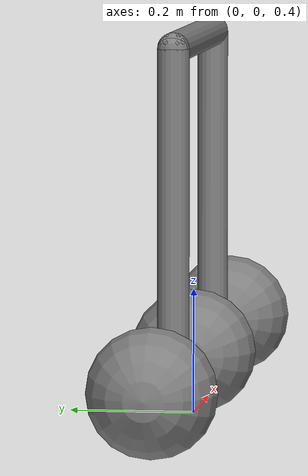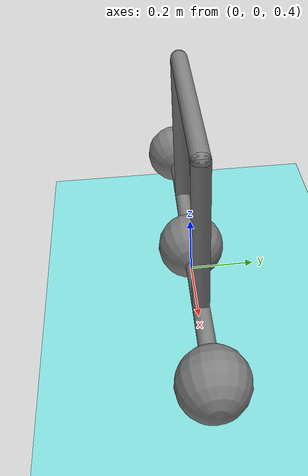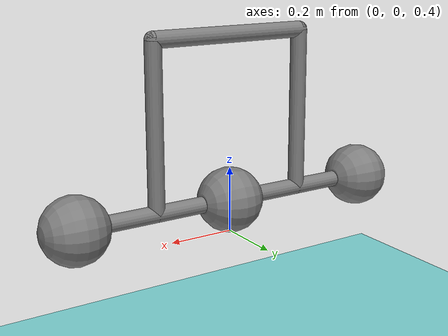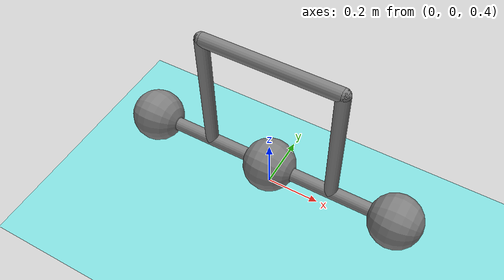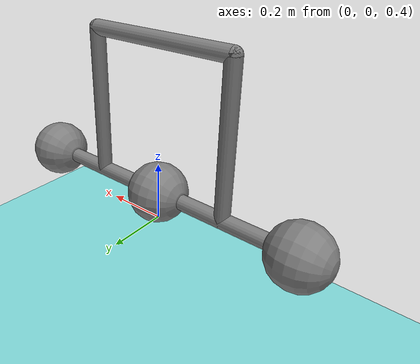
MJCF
<mujoco model="MuJoCo Model">
  <compiler angle="radian"/>

  <asset>
    <texture type="2d" name="ground_texture" builtin="checker" rgb1="0.5 0.8 0.9" rgb2="0.5 0.9 0.8" markrgb="0.8 0.8 0.8" width="200" height="200"/>
    <texture type="skybox" name="skybox" builtin="gradient" width="300" height="1800"/>
    <material name="groundplane" texture="ground_texture" texrepeat="2 2"/>
  </asset>

  <worldbody>
    <geom size="0 0 0.05" type="plane" material="groundplane"/>
    <light pos="0 0 15" dir="0 0 -1" directional="true" diffuse="0.1 0.1 0.1" specular="0 0 0"/>
    <light pos="0 2 15" dir="0 0 -1" directional="true" diffuse="0.1 0.1 0.1" specular="0 0 0"/>
    <light pos="0 4 15" dir="0 0 -1" directional="true" diffuse="0.1 0.1 0.1" specular="0 0 0"/>
    <light pos="0 6 15" dir="0 0 -1" directional="true" diffuse="0.1 0.1 0.1" specular="0 0 0"/>
    <light pos="0 8 15" dir="0 0 -1" directional="true" diffuse="0.1 0.1 0.1" specular="0 0 0"/>
    <light pos="2 0 15" dir="0 0 -1" directional="true" diffuse="0.1 0.1 0.1" specular="0 0 0"/>
    <light pos="2 2 15" dir="0 0 -1" directional="true" diffuse="0.1 0.1 0.1" specular="0 0 0"/>
    <light pos="2 4 15" dir="0 0 -1" directional="true" diffuse="0.1 0.1 0.1" specular="0 0 0"/>
    <light pos="2 6 15" dir="0 0 -1" directional="true" diffuse="0.1 0.1 0.1" specular="0 0 0"/>
    <light pos="2 8 15" dir="0 0 -1" directional="true" diffuse="0.1 0.1 0.1" specular="0 0 0"/>
    <light pos="4 0 15" dir="0 0 -1" directional="true" diffuse="0.1 0.1 0.1" specular="0 0 0"/>
    <light pos="4 2 15" dir="0 0 -1" directional="true" diffuse="0.1 0.1 0.1" specular="0 0 0"/>
    <light pos="4 4 15" dir="0 0 -1" directional="true" diffuse="0.1 0.1 0.1" specular="0 0 0"/>
    <light pos="4 6 15" dir="0 0 -1" directional="true" diffuse="0.1 0.1 0.1" specular="0 0 0"/>
    <light pos="4 8 15" dir="0 0 -1" directional="true" diffuse="0.1 0.1 0.1" specular="0 0 0"/>
    <light pos="6 0 15" dir="0 0 -1" directional="true" diffuse="0.1 0.1 0.1" specular="0 0 0"/>
    <light pos="6 2 15" dir="0 0 -1" directional="true" diffuse="0.1 0.1 0.1" specular="0 0 0"/>
    <light pos="6 4 15" dir="0 0 -1" directional="true" diffuse="0.1 0.1 0.1" specular="0 0 0"/>
    <light pos="6 6 15" dir="0 0 -1" directional="true" diffuse="0.1 0.1 0.1" specular="0 0 0"/>
    <light pos="6 8 15" dir="0 0 -1" directional="true" diffuse="0.1 0.1 0.1" specular="0 0 0"/>
    <light pos="8 0 15" dir="0 0 -1" directional="true" diffuse="0.1 0.1 0.1" specular="0 0 0"/>
    <light pos="8 2 15" dir="0 0 -1" directional="true" diffuse="0.1 0.1 0.1" specular="0 0 0"/>
    <light pos="8 4 15" dir="0 0 -1" directional="true" diffuse="0.1 0.1 0.1" specular="0 0 0"/>
    <light pos="8 6 15" dir="0 0 -1" directional="true" diffuse="0.1 0.1 0.1" specular="0 0 0"/>
    <light pos="8 8 15" dir="0 0 -1" directional="true" diffuse="0.1 0.1 0.1" specular="0 0 0"/>
    <body name="torso" pos="0 0 1">
      <joint name="z_slide" pos="0 0 0" axis="0 0 1" type="slide"/>
      <joint name="x_slide" pos="0 0 0" axis="1 0 0" type="slide"/>
      <joint name="y_rot" pos="0 0 0" axis="0 1 0"/>
      <geom size="0.025 0.25" quat="0.707107 0 0.707107 0" type="capsule" contype="2" mass="1"/>
      <body name="front_thigh" pos="0.25 0 -0.25">
        <joint name="front_hip" pos="0 0 0.25" axis="0 1 0"/>
        <geom size="0.025 0.25" type="capsule" contype="2" mass="1"/>
        <body name="front_shin" pos="0 0 -0.25" quat="0.707107 0 0.707107 0">
          <joint name="front_knee" pos="0 0 0" axis="0 1 0"/>
          <geom size="0.025 0.25" type="capsule" contype="2" mass="1"/>
          <body name="front_wheel1" pos="0 0 0.25">
            <joint name="front_wheel1_joint" pos="0 0 0" axis="0 1 0"/>
            <geom size="0.1" contype="4" conaffinity="5" mass="1"/>
          </body>
          <body name="front_wheel2" pos="0 0 -0.25">
            <joint name="front_wheel2_joint" pos="0 0 0" axis="0 1 0"/>
            <geom size="0.1" contype="4" conaffinity="5" mass="1"/>
          </body>
        </body>
      </body>
      <body name="rear_thigh" pos="-0.25 0 -0.25">
        <joint name="rear_hip" pos="0 0 0.25" axis="0 1 0"/>
        <geom size="0.025 0.25" type="capsule" contype="2" mass="1"/>
        <body name="rear_shin" pos="0 0 -0.25" quat="0.707107 0 0.707107 0">
          <joint name="rear_knee" pos="0 0 0" axis="0 1 0"/>
          <geom size="0.025 0.25" type="capsule" contype="2" mass="1"/>
          <body name="rear_wheel1" pos="0 0 0.25">
            <joint name="rear_wheel1_joint" pos="0 0 0" axis="0 1 0"/>
            <geom size="0.1" contype="4" conaffinity="5" mass="1"/>
          </body>
          <body name="rear_wheel2" pos="0 0 -0.25">
            <joint name="rear_wheel2_joint" pos="0 0 0" axis="0 1 0"/>
            <geom size="0.1" contype="4" conaffinity="5" mass="1"/>
          </body>
        </body>
      </body>
    </body>
  </worldbody>
</mujoco>
